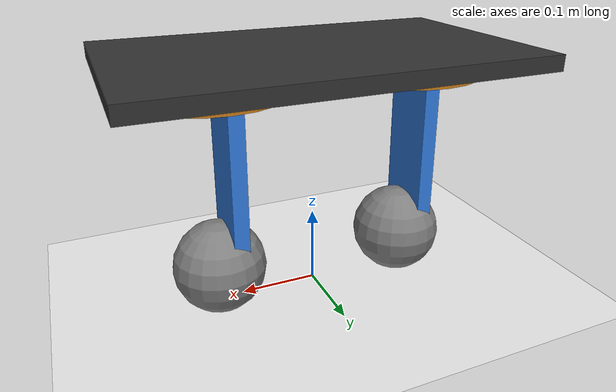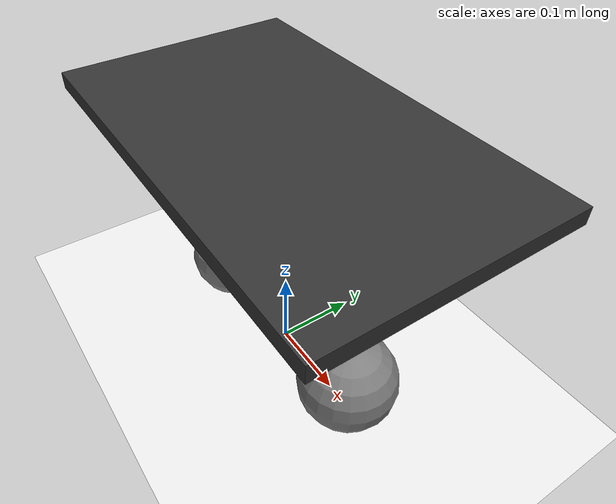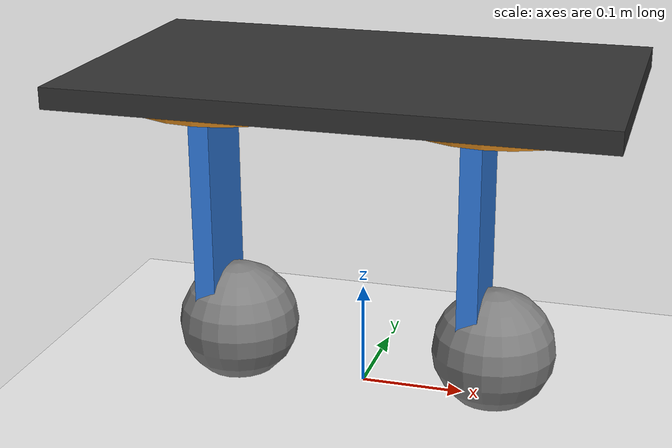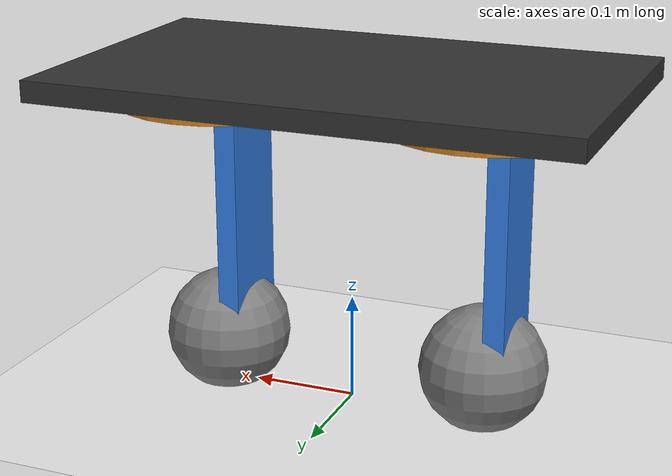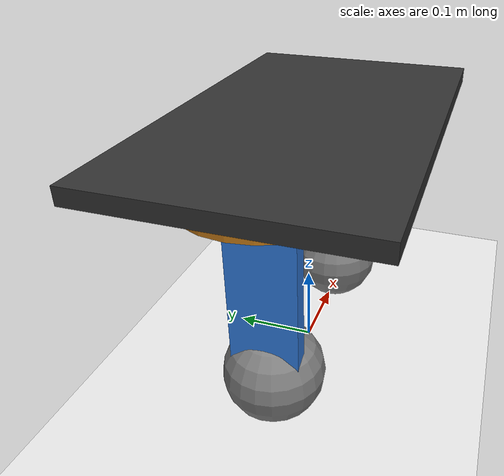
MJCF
<mujoco model="robot_roll2d_locked">
  <!--
    原机器人二维约束工况（roll 平面）：
    - 只保留 y 方向平移 + 绕 x 轴侧倾（roll）
    - 舵角固定为沿 y 方向滚动（通过模块整体旋转 +90°）
    - 轮子用力矩控制，便于 LQR 直接输出控制量
    - 质量与几何参数来自当前 robot/robot.xml
  -->

  <compiler angle="radian" coordinate="local" inertiafromgeom="true" />
  <option timestep="0.001" gravity="0 0 -9.81" integrator="RK4" cone="elliptic" />

  <default>
    <joint damping="1.0" armature="0.0" />
    <geom friction="0.9 0.01 0.0001" solref="0.02 1" solimp="0.9 0.95 0.002" />
  </default>

  <asset>
    <texture name="tex_checker" type="2d" builtin="checker" width="512" height="512" rgb1="0.9 0.9 0.9" rgb2="0.6 0.6 0.6" />
    <material name="mat_ground" texture="tex_checker" texrepeat="4 4" texuniform="true" />
    <material name="mat_chassis" rgba="0.2 0.2 0.2 1" />
    <material name="mat_leg" rgba="0.2 0.5 0.9 1" />
    <material name="mat_wheel" rgba="0.05 0.05 0.05 1" />
    <material name="mat_servo" rgba="0.8 0.5 0.1 1" />
  </asset>

  <worldbody>
    <!-- 地面与相机 -->
    <geom name="ground" type="plane" size="30 30 0.1" rgba="0.92 0.92 0.92 1"  material="mat_ground" />
    <geom type="plane" size="10 10 0.1" solref="0.04 0.9" solimp="0.9 0.99 0.003" material="mat_ground"/>
    <light name="sun" pos="0 0 2" dir="0 0 -1" diffuse="0.8 0.8 0.8" specular="0.2 0.2 0.2" />
    <camera name="track" mode="trackcom" pos="0 -1.2 0.6" xyaxes="1 0 0 0 0 1" />

    <!--
      坐标系：x 向前，y 向左，z 向上
      这里把 roll 转轴放在轮-地接触附近（z≈0），更接近真实侧倾支点
    -->
    <body name="roll_base" pos="0 0 0">
      <!-- 二维约束：允许 y 平移 + z 自由落地 + roll -->
      <joint name="base_x" type="slide" axis="1 0 0" damping="0" armature="0" />
      <joint name="base_y" type="slide" axis="0 1 0" damping="0" armature="0" />
      <joint name="base_z" type="slide" axis="0 0 1" damping="0" armature="0" />
      <joint name="base_yaw" type="hinge" axis="0 0 1" damping="0" armature="0" />
      <joint name="base_roll" type="hinge" axis="1 0 0" damping="0" armature="0"/>
      <joint name="base_pitch" type="hinge" axis="0 1 0" damping="0" armature="0" />

      <!-- 机身主体（相对 roll_base 上移到原来的高度） -->
      <body name="chassis" pos="0 0 0.31">
        <geom
          name="chassis_geom"
          type="box"
          size="0.25 0.15 0.01"
          mass="6.87"
          material="mat_chassis" />

        <site name="ctrl_site" pos="0.15 0 0" size="0.01" rgba="0 1 0 1" />

        <!-- 前轮腿模块（整体绕 z 轴旋转 +90°，等效舵角锁定） -->
        <body name="left_module" pos="0.13 0 -0.02" euler="0 0 1.5708">
          <joint name="left_steer" type="hinge" axis="0 0 1" damping="0.3" frictionloss="0.1"/>
          <geom
            name="left_servo_geom"
            type="cylinder"
            size="0.1 0.01"
            mass="0.304"
            material="mat_servo" />

          <geom
            name="left_leg_geom"
            type="box"
            pos="0 0.02 -0.10"
            size="0.04 0.01 0.12"
            mass="5"
            material="mat_leg" />

          <body name="left_wheel" pos="0 0 -0.24">
            <joint name="left_wheel_spin" type="hinge" axis="0 1 0" damping="0.1" armature="0.00"/>
            <geom name="left_wheel_geom" type="sphere" size="0.06" friction="0.8 0.01 0.001"/>
          </body>
        </body>

        <!-- 后轮腿模块（整体绕 z 轴旋转 +90°，等效舵角锁定） -->
        <body name="right_module" pos="-0.13 0 -0.02" euler="0 0 1.5708">
          <joint name="right_steer" type="hinge" axis="0 0 1" damping="0.3" frictionloss="0.1" />
          <geom
            name="right_servo_geom"
            type="cylinder"
            size="0.1 0.01"
            mass="0.304"
            material="mat_servo" />

          <geom
            name="right_leg_geom"
            type="box"
            pos="0 0.02 -0.10"
            size="0.04 0.01 0.12"
            mass="5"
            material="mat_leg" />

          <body name="right_wheel" pos="0 0 -0.24">
            <joint name="right_wheel_spin" type="hinge" axis="0 1 0" damping="0.1" armature="0.00"/>
            <geom name="right_wheel_geom" type="sphere" size="0.06" friction="0.8 0.01 0.001"/>
          </body>
        </body>
      </body>
    </body>

  </worldbody>

  <actuator>
    <!-- 轮子力矩控制：LQR 输出可直接作为控制量 -->
    <motor name="left_wheel_tau" joint="left_wheel_spin" gear="1" ctrlrange="-8 8" />
    <motor name="right_wheel_tau" joint="right_wheel_spin" gear="1" ctrlrange="-8 8" />
    <!-- 舵角位置控制（swerve 用） -->
    <motor name="left_steer_tau" joint="left_steer" gear="1" ctrlrange="-15 15" />
    <motor name="right_steer_tau" joint="right_steer" gear="1" ctrlrange="-15 15" />
  </actuator>
</mujoco>
